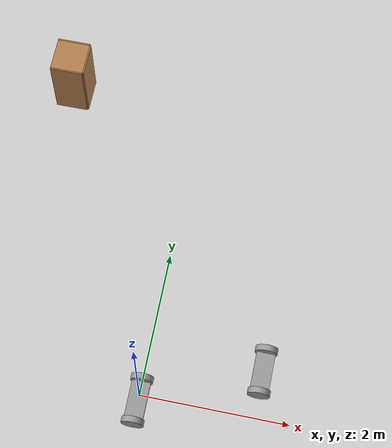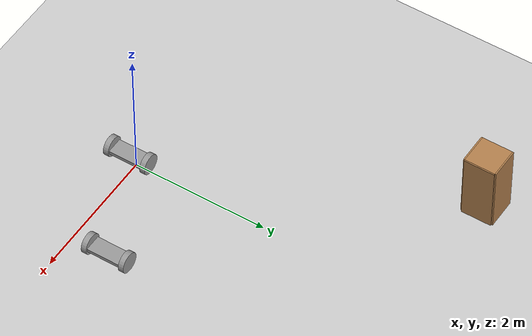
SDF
<sdf version="1.6">
 <world name="default">
  <model name="ground_plane">
   <static>1</static>
   <link name="link">
    <collision name="collision">
     <geometry><plane><normal>0 0 1</normal><size>100 100</size></plane></geometry>
     <surface><friction><ode><mu>100</mu><mu2>50</mu2></ode></friction></surface>
    </collision>
    <visual name="visual">
     <cast_shadows>0</cast_shadows>
     <geometry><plane><normal>0 0 1</normal><size>100 100</size></plane></geometry>
     <material>
      <script><uri>file://media/materials/scripts/gazebo.material</uri><name>Gazebo/Grey</name></script>
     </material>
    </visual>
   </link>
  </model>
  <model name="myrobot">
   <link name="link_2">
    <pose>0 0.290015 0 1.5707 -0 0</pose>
    <inertial>
     <mass>0.0501056</mass>
     <inertia>
      <ixx>0.00149856</ixx>
      <ixy>0</ixy>
      <ixz>0</ixz>
      <iyy>0.00149856</iyy>
      <iyz>0</iyz>
      <izz>0.00289929</izz>
     </inertia>
    </inertial>
    <visual name="visual">
     <geometry><cylinder><radius>0.15</radius><length>0.0800003</length></cylinder></geometry>
     <material>
      <lighting>1</lighting>
      <script><uri>file://media/materials/scripts/gazebo.material</uri><name>Gazebo/Grey</name></script>
      <ambient>0.3 0.3 0.3 1</ambient>
      <diffuse>0.7 0.7 0.7 1</diffuse>
      <specular>0.01 0.01 0.01 1</specular>
      <emissive>0 0 0 1</emissive>
      <shader type="vertex"><normal_map>__default__</normal_map></shader>
     </material>
    </visual>
    <collision name="collision">
     <geometry><cylinder><radius>0.15</radius><length>0.08</length></cylinder></geometry>
     <surface>
      <friction>
       <ode><mu>1</mu><mu2>1</mu2><fdir1>0 0 0</fdir1><slip1>0</slip1><slip2>0</slip2></ode>
       <torsional>
        <coefficient>1</coefficient>
        <patch_radius>0</patch_radius>
        <surface_radius>0</surface_radius>
        <use_patch_radius>1</use_patch_radius>
        <ode><slip>0</slip></ode>
       </torsional>
      </friction>
      <bounce><restitution_coefficient>0</restitution_coefficient><threshold>1e+06</threshold></bounce>
      <contact>
       <collide_without_contact>0</collide_without_contact>
       <collide_without_contact_bitmask>1</collide_without_contact_bitmask>
       <collide_bitmask>1</collide_bitmask>
       <ode>
        <soft_cfm>0</soft_cfm>
        <soft_erp>0.2</soft_erp>
        <kp>1e+13</kp>
        <kd>1</kd>
        <max_vel>0.01</max_vel>
        <min_depth>0</min_depth>
       </ode>
       <bullet>
        <split_impulse>1</split_impulse>
        <split_impulse_penetration_threshold>-0.01</split_impulse_penetration_threshold>
        <soft_cfm>0</soft_cfm>
        <soft_erp>0.2</soft_erp>
        <kp>1e+13</kp>
        <kd>1</kd>
       </bullet>
      </contact>
     </surface>
    </collision>
   </link>
   <link name="link_2_clone">
    <pose>0 -0.290014 0 1.5707 -0 0</pose>
    <inertial>
     <mass>0.0501056</mass>
     <inertia>
      <ixx>0.00149856</ixx>
      <ixy>0</ixy>
      <ixz>0</ixz>
      <iyy>0.00149856</iyy>
      <iyz>0</iyz>
      <izz>0.00289929</izz>
     </inertia>
    </inertial>
    <visual name="visual">
     <geometry><cylinder><radius>0.15</radius><length>0.0800003</length></cylinder></geometry>
     <material>
      <lighting>1</lighting>
      <script><uri>file://media/materials/scripts/gazebo.material</uri><name>Gazebo/Grey</name></script>
      <ambient>0.3 0.3 0.3 1</ambient>
      <diffuse>0.7 0.7 0.7 1</diffuse>
      <specular>0.01 0.01 0.01 1</specular>
      <emissive>0 0 0 1</emissive>
      <shader type="vertex"><normal_map>__default__</normal_map></shader>
     </material>
    </visual>
    <collision name="collision">
     <geometry><cylinder><radius>0.15</radius><length>0.08</length></cylinder></geometry>
     <surface>
      <friction>
       <ode><mu>1</mu><mu2>1</mu2><fdir1>0 0 0</fdir1><slip1>0</slip1><slip2>0</slip2></ode>
       <torsional>
        <coefficient>1</coefficient>
        <patch_radius>0</patch_radius>
        <surface_radius>0</surface_radius>
        <use_patch_radius>1</use_patch_radius>
        <ode><slip>0</slip></ode>
       </torsional>
      </friction>
      <bounce><restitution_coefficient>0</restitution_coefficient><threshold>1e+06</threshold></bounce>
      <contact>
       <collide_without_contact>0</collide_without_contact>
       <collide_without_contact_bitmask>1</collide_without_contact_bitmask>
       <collide_bitmask>1</collide_bitmask>
       <ode>
        <soft_cfm>0</soft_cfm>
        <soft_erp>0.2</soft_erp>
        <kp>1e+13</kp>
        <kd>1</kd>
        <max_vel>0.01</max_vel>
        <min_depth>0</min_depth>
       </ode>
       <bullet>
        <split_impulse>1</split_impulse>
        <split_impulse_penetration_threshold>-0.01</split_impulse_penetration_threshold>
        <soft_cfm>0</soft_cfm>
        <soft_erp>0.2</soft_erp>
        <kp>1e+13</kp>
        <kd>1</kd>
       </bullet>
      </contact>
     </surface>
    </collision>
   </link>
   <link name="link_3">
    <inertial>
     <mass>1</mass>
     <inertia>
      <ixx>0.166667</ixx>
      <ixy>0</ixy>
      <ixz>0</ixz>
      <iyy>0.166667</iyy>
      <iyz>0</iyz>
      <izz>0.166667</izz>
     </inertia>
    </inertial>
    <visual name="visual">
     <geometry><box><size>0.25 0.5 0.05</size></box></geometry>
     <material>
      <lighting>1</lighting>
      <script><uri>file://media/materials/scripts/gazebo.material</uri><name>Gazebo/Grey</name></script>
      <ambient>0.3 0.3 0.3 1</ambient>
      <diffuse>0.7 0.7 0.7 1</diffuse>
      <specular>0.01 0.01 0.01 1</specular>
      <emissive>0 0 0 1</emissive>
      <shader type="vertex"><normal_map>__default__</normal_map></shader>
     </material>
    </visual>
    <collision name="collision">
     <geometry><box><size>0.25 0.5 0.05</size></box></geometry>
     <surface>
      <friction>
       <ode><mu>1</mu><mu2>1</mu2><fdir1>0 0 0</fdir1><slip1>0</slip1><slip2>0</slip2></ode>
       <torsional>
        <coefficient>1</coefficient>
        <patch_radius>0</patch_radius>
        <surface_radius>0</surface_radius>
        <use_patch_radius>1</use_patch_radius>
        <ode><slip>0</slip></ode>
       </torsional>
      </friction>
      <bounce><restitution_coefficient>0</restitution_coefficient><threshold>1e+06</threshold></bounce>
      <contact>
       <collide_without_contact>0</collide_without_contact>
       <collide_without_contact_bitmask>1</collide_without_contact_bitmask>
       <collide_bitmask>1</collide_bitmask>
       <ode>
        <soft_cfm>0</soft_cfm>
        <soft_erp>0.2</soft_erp>
        <kp>1e+13</kp>
        <kd>1</kd>
        <max_vel>0.01</max_vel>
        <min_depth>0</min_depth>
       </ode>
       <bullet>
        <split_impulse>1</split_impulse>
        <split_impulse_penetration_threshold>-0.01</split_impulse_penetration_threshold>
        <soft_cfm>0</soft_cfm>
        <soft_erp>0.2</soft_erp>
        <kp>1e+13</kp>
        <kd>1</kd>
       </bullet>
      </contact>
     </surface>
    </collision>
   </link>
   <joint name="link_2_JOINT_1" type="revolute">
    <parent>link_3</parent>
    <child>link_2_clone</child>
    <axis>
     <xyz>0 0 1</xyz>
     <use_parent_model_frame>0</use_parent_model_frame>
     <limit>
      <lower>-1.79769e+308</lower>
      <upper>1.79769e+308</upper>
      <effort>-1</effort>
      <velocity>-1</velocity>
     </limit>
     <dynamics>
      <spring_reference>0</spring_reference>
      <spring_stiffness>0</spring_stiffness>
      <damping>0</damping>
     </dynamics>
    </axis>
    <physics>
     <ode><limit><cfm>0</cfm><erp>0.2</erp></limit><suspension><cfm>0</cfm><erp>0.2</erp></suspension></ode>
    </physics>
   </joint>
   <joint name="link_3_JOINT_2" type="revolute">
    <parent>link_3</parent>
    <child>link_2</child>
    <axis>
     <xyz>0 0 1</xyz>
     <use_parent_model_frame>0</use_parent_model_frame>
     <limit>
      <lower>-1.79769e+308</lower>
      <upper>1.79769e+308</upper>
      <effort>-1</effort>
      <velocity>-1</velocity>
     </limit>
     <dynamics>
      <spring_reference>0</spring_reference>
      <spring_stiffness>0</spring_stiffness>
      <damping>0</damping>
     </dynamics>
    </axis>
    <physics>
     <ode><limit><cfm>0</cfm><erp>0.2</erp></limit><suspension><cfm>0</cfm><erp>0.2</erp></suspension></ode>
    </physics>
   </joint>
   <static>0</static>
   <pose>0 -0.098747 0.149997 5e-06 -0 0</pose>
  </model>
  <model name="cabinet">
   <static>1</static>
   <link name="cabinet_bottom_plate">
    <inertial>
     <pose>0 0 -1 0 -0 0</pose>
     <inertia><ixx>2.05</ixx><ixy>0</ixy><ixz>0</ixz><iyy>2.05</iyy><iyz>0</iyz><izz>2.05</izz></inertia>
     <mass>25</mass>
    </inertial>
    <collision name="cabinet_bottom_plate_geom">
     <pose>0 0 0.01 0 -0 0</pose>
     <geometry><box><size>0.45 0.45 0.02</size></box></geometry>
    </collision>
    <visual name="cabinet_bottom_plate_geom_visual">
     <pose>0 0 0.01 0 -0 0</pose>
     <geometry><box><size>0.45 0.45 0.02</size></box></geometry>
     <material>
      <script><uri>file://media/materials/scripts/gazebo.material</uri><name>Gazebo/Wood</name></script>
     </material>
    </visual>
    <collision name="cabinet_bottom_plate_geom_cabinet_back_plate">
     <pose>0.235 0 0.51 0 -0 0</pose>
     <geometry><box><size>0.02 0.45 1.02</size></box></geometry>
    </collision>
    <visual name="cabinet_bottom_plate_geom_cabinet_back_plate_visual">
     <pose>0.235 0 0.51 0 -0 0</pose>
     <geometry><box><size>0.02 0.45 1.02</size></box></geometry>
     <material>
      <script><uri>file://media/materials/scripts/gazebo.material</uri><name>Gazebo/Wood</name></script>
     </material>
    </visual>
    <collision name="cabinet_bottom_plate_geom_cabinet_left_plate">
     <pose>0 0.235 0.51 0 -0 0</pose>
     <geometry><box><size>0.45 0.02 1.02</size></box></geometry>
    </collision>
    <visual name="cabinet_bottom_plate_geom_cabinet_left_plate_visual">
     <pose>0 0.235 0.51 0 -0 0</pose>
     <geometry><box><size>0.45 0.02 1.02</size></box></geometry>
     <material>
      <script><uri>file://media/materials/scripts/gazebo.material</uri><name>Gazebo/Wood</name></script>
     </material>
    </visual>
    <collision name="cabinet_bottom_plate_geom_cabinet_middle_plate">
     <pose>0 0 0.51 0 -0 0</pose>
     <geometry><box><size>0.45 0.45 0.02</size></box></geometry>
    </collision>
    <visual name="cabinet_bottom_plate_geom_cabinet_middle_plate_visual">
     <pose>0 0 0.51 0 -0 0</pose>
     <geometry><box><size>0.45 0.45 0.02</size></box></geometry>
     <material>
      <script><uri>file://media/materials/scripts/gazebo.material</uri><name>Gazebo/Wood</name></script>
     </material>
    </visual>
    <collision name="cabinet_bottom_plate_geom_cabinet_right_plate">
     <pose>0 -0.235 0.51 0 -0 0</pose>
     <geometry><box><size>0.45 0.02 1.02</size></box></geometry>
    </collision>
    <visual name="cabinet_bottom_plate_geom_cabinet_right_plate_visual">
     <pose>0 -0.235 0.51 0 -0 0</pose>
     <geometry><box><size>0.45 0.02 1.02</size></box></geometry>
     <material>
      <script><uri>file://media/materials/scripts/gazebo.material</uri><name>Gazebo/Wood</name></script>
     </material>
    </visual>
    <collision name="cabinet_bottom_plate_geom_cabinet_top_plate">
     <pose>0 0 1.01 0 -0 0</pose>
     <geometry><box><size>0.45 0.45 0.02</size></box></geometry>
    </collision>
    <visual name="cabinet_bottom_plate_geom_cabinet_top_plate_visual">
     <pose>0 0 1.01 0 -0 0</pose>
     <geometry><box><size>0.45 0.45 0.02</size></box></geometry>
     <material>
      <script><uri>file://media/materials/scripts/gazebo.material</uri><name>Gazebo/Wood</name></script>
     </material>
    </visual>
   </link>
   <pose>-1.88447 4.24393 0 0 -0 0</pose>
  </model>
  <model name="myrobot_1">
   <link name="link_2">
    <pose>0 0.290015 0 1.5707 -0 0</pose>
    <inertial>
     <mass>0.0501056</mass>
     <inertia>
      <ixx>0.00149856</ixx>
      <ixy>0</ixy>
      <ixz>0</ixz>
      <iyy>0.00149856</iyy>
      <iyz>0</iyz>
      <izz>0.00289929</izz>
     </inertia>
    </inertial>
    <visual name="visual">
     <geometry><cylinder><radius>0.15</radius><length>0.0800003</length></cylinder></geometry>
     <material>
      <lighting>1</lighting>
      <script><uri>file://media/materials/scripts/gazebo.material</uri><name>Gazebo/Grey</name></script>
      <ambient>0.3 0.3 0.3 1</ambient>
      <diffuse>0.7 0.7 0.7 1</diffuse>
      <specular>0.01 0.01 0.01 1</specular>
      <emissive>0 0 0 1</emissive>
      <shader type="vertex"><normal_map>__default__</normal_map></shader>
     </material>
    </visual>
    <collision name="collision">
     <geometry><cylinder><radius>0.15</radius><length>0.08</length></cylinder></geometry>
     <surface>
      <friction>
       <ode><mu>1</mu><mu2>1</mu2><fdir1>0 0 0</fdir1><slip1>0</slip1><slip2>0</slip2></ode>
       <torsional>
        <coefficient>1</coefficient>
        <patch_radius>0</patch_radius>
        <surface_radius>0</surface_radius>
        <use_patch_radius>1</use_patch_radius>
        <ode><slip>0</slip></ode>
       </torsional>
      </friction>
      <bounce><restitution_coefficient>0</restitution_coefficient><threshold>1e+06</threshold></bounce>
      <contact>
       <collide_without_contact>0</collide_without_contact>
       <collide_without_contact_bitmask>1</collide_without_contact_bitmask>
       <collide_bitmask>1</collide_bitmask>
       <ode>
        <soft_cfm>0</soft_cfm>
        <soft_erp>0.2</soft_erp>
        <kp>1e+13</kp>
        <kd>1</kd>
        <max_vel>0.01</max_vel>
        <min_depth>0</min_depth>
       </ode>
       <bullet>
        <split_impulse>1</split_impulse>
        <split_impulse_penetration_threshold>-0.01</split_impulse_penetration_threshold>
        <soft_cfm>0</soft_cfm>
        <soft_erp>0.2</soft_erp>
        <kp>1e+13</kp>
        <kd>1</kd>
       </bullet>
      </contact>
     </surface>
    </collision>
   </link>
   <link name="link_2_clone">
    <pose>0 -0.290014 0 1.5707 -0 0</pose>
    <inertial>
     <mass>0.0501056</mass>
     <inertia>
      <ixx>0.00149856</ixx>
      <ixy>0</ixy>
      <ixz>0</ixz>
      <iyy>0.00149856</iyy>
      <iyz>0</iyz>
      <izz>0.00289929</izz>
     </inertia>
    </inertial>
    <visual name="visual">
     <geometry><cylinder><radius>0.15</radius><length>0.0800003</length></cylinder></geometry>
     <material>
      <lighting>1</lighting>
      <script><uri>file://media/materials/scripts/gazebo.material</uri><name>Gazebo/Grey</name></script>
      <ambient>0.3 0.3 0.3 1</ambient>
      <diffuse>0.7 0.7 0.7 1</diffuse>
      <specular>0.01 0.01 0.01 1</specular>
      <emissive>0 0 0 1</emissive>
      <shader type="vertex"><normal_map>__default__</normal_map></shader>
     </material>
    </visual>
    <collision name="collision">
     <geometry><cylinder><radius>0.15</radius><length>0.08</length></cylinder></geometry>
     <surface>
      <friction>
       <ode><mu>1</mu><mu2>1</mu2><fdir1>0 0 0</fdir1><slip1>0</slip1><slip2>0</slip2></ode>
       <torsional>
        <coefficient>1</coefficient>
        <patch_radius>0</patch_radius>
        <surface_radius>0</surface_radius>
        <use_patch_radius>1</use_patch_radius>
        <ode><slip>0</slip></ode>
       </torsional>
      </friction>
      <bounce><restitution_coefficient>0</restitution_coefficient><threshold>1e+06</threshold></bounce>
      <contact>
       <collide_without_contact>0</collide_without_contact>
       <collide_without_contact_bitmask>1</collide_without_contact_bitmask>
       <collide_bitmask>1</collide_bitmask>
       <ode>
        <soft_cfm>0</soft_cfm>
        <soft_erp>0.2</soft_erp>
        <kp>1e+13</kp>
        <kd>1</kd>
        <max_vel>0.01</max_vel>
        <min_depth>0</min_depth>
       </ode>
       <bullet>
        <split_impulse>1</split_impulse>
        <split_impulse_penetration_threshold>-0.01</split_impulse_penetration_threshold>
        <soft_cfm>0</soft_cfm>
        <soft_erp>0.2</soft_erp>
        <kp>1e+13</kp>
        <kd>1</kd>
       </bullet>
      </contact>
     </surface>
    </collision>
   </link>
   <link name="link_3">
    <inertial>
     <mass>1</mass>
     <inertia>
      <ixx>0.166667</ixx>
      <ixy>0</ixy>
      <ixz>0</ixz>
      <iyy>0.166667</iyy>
      <iyz>0</iyz>
      <izz>0.166667</izz>
     </inertia>
    </inertial>
    <visual name="visual">
     <geometry><box><size>0.25 0.5 0.05</size></box></geometry>
     <material>
      <lighting>1</lighting>
      <script><uri>file://media/materials/scripts/gazebo.material</uri><name>Gazebo/Grey</name></script>
      <ambient>0.3 0.3 0.3 1</ambient>
      <diffuse>0.7 0.7 0.7 1</diffuse>
      <specular>0.01 0.01 0.01 1</specular>
      <emissive>0 0 0 1</emissive>
      <shader type="vertex"><normal_map>__default__</normal_map></shader>
     </material>
    </visual>
    <collision name="collision">
     <geometry><box><size>0.25 0.5 0.05</size></box></geometry>
     <surface>
      <friction>
       <ode><mu>1</mu><mu2>1</mu2><fdir1>0 0 0</fdir1><slip1>0</slip1><slip2>0</slip2></ode>
       <torsional>
        <coefficient>1</coefficient>
        <patch_radius>0</patch_radius>
        <surface_radius>0</surface_radius>
        <use_patch_radius>1</use_patch_radius>
        <ode><slip>0</slip></ode>
       </torsional>
      </friction>
      <bounce><restitution_coefficient>0</restitution_coefficient><threshold>1e+06</threshold></bounce>
      <contact>
       <collide_without_contact>0</collide_without_contact>
       <collide_without_contact_bitmask>1</collide_without_contact_bitmask>
       <collide_bitmask>1</collide_bitmask>
       <ode>
        <soft_cfm>0</soft_cfm>
        <soft_erp>0.2</soft_erp>
        <kp>1e+13</kp>
        <kd>1</kd>
        <max_vel>0.01</max_vel>
        <min_depth>0</min_depth>
       </ode>
       <bullet>
        <split_impulse>1</split_impulse>
        <split_impulse_penetration_threshold>-0.01</split_impulse_penetration_threshold>
        <soft_cfm>0</soft_cfm>
        <soft_erp>0.2</soft_erp>
        <kp>1e+13</kp>
        <kd>1</kd>
       </bullet>
      </contact>
     </surface>
    </collision>
   </link>
   <joint name="link_2_JOINT_1" type="revolute">
    <parent>link_3</parent>
    <child>link_2_clone</child>
    <axis>
     <xyz>0 0 1</xyz>
     <use_parent_model_frame>0</use_parent_model_frame>
     <limit>
      <lower>-1.79769e+308</lower>
      <upper>1.79769e+308</upper>
      <effort>-1</effort>
      <velocity>-1</velocity>
     </limit>
     <dynamics>
      <spring_reference>0</spring_reference>
      <spring_stiffness>0</spring_stiffness>
      <damping>0</damping>
     </dynamics>
    </axis>
    <physics>
     <ode><limit><cfm>0</cfm><erp>0.2</erp></limit><suspension><cfm>0</cfm><erp>0.2</erp></suspension></ode>
    </physics>
   </joint>
   <joint name="link_3_JOINT_2" type="revolute">
    <parent>link_3</parent>
    <child>link_2</child>
    <axis>
     <xyz>0 0 1</xyz>
     <use_parent_model_frame>0</use_parent_model_frame>
     <limit>
      <lower>-1.79769e+308</lower>
      <upper>1.79769e+308</upper>
      <effort>-1</effort>
      <velocity>-1</velocity>
     </limit>
     <dynamics>
      <spring_reference>0</spring_reference>
      <spring_stiffness>0</spring_stiffness>
      <damping>0</damping>
     </dynamics>
    </axis>
    <physics>
     <ode><limit><cfm>0</cfm><erp>0.2</erp></limit><suspension><cfm>0</cfm><erp>0.2</erp></suspension></ode>
    </physics>
   </joint>
   <static>0</static>
   <pose>1.52876 0.604126 0.149997 5e-06 -0 0</pose>
  </model>
 </world>
</sdf>
